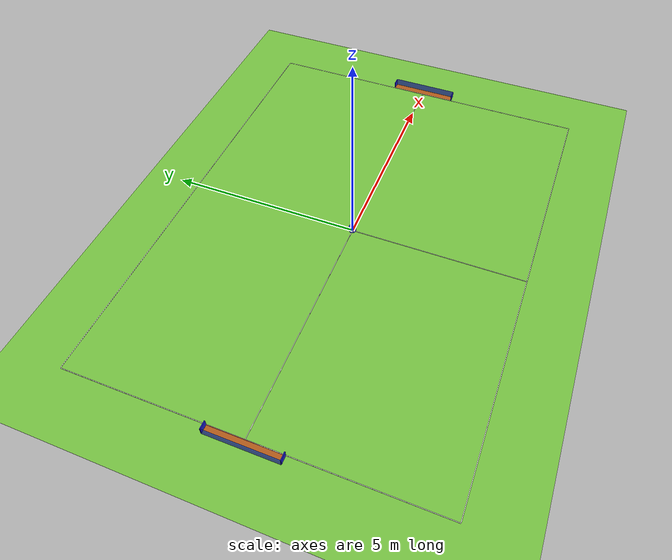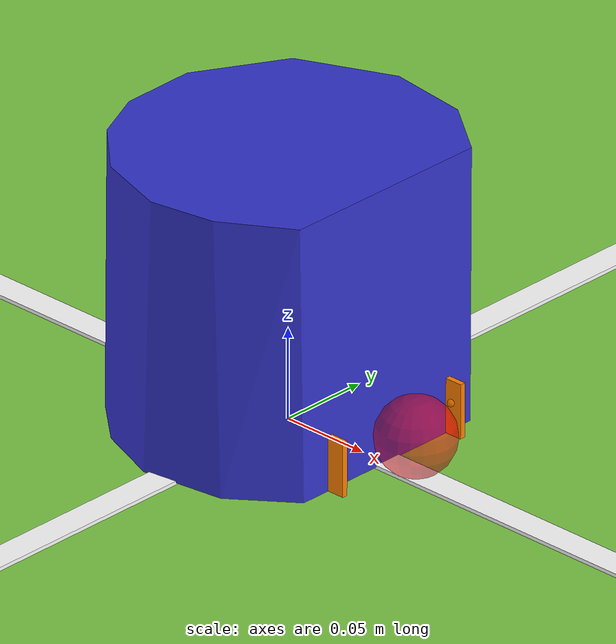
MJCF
<mujoco model="robot_soccer_v3"> <option gravity="0 0 -9.81"
          timestep="0.002"
          solver="Newton"          iterations="10"           ls_iterations="15"       jacobian="dense">        <flag eulerdamp="disable"/>      </option>
  <default>
    <geom contype="0" conaffinity="0" group="1"/>
    <default class="visual">
       <geom contype="0" conaffinity="0" group="0"/> </default>
    <default class="collision">
        <geom contype="1" conaffinity="1" group="1" friction="0.7 0.1 0.1" solref="0.02 1" solimp="0.9 0.95 0.001"/> </default>
  </default>
  <asset>
    <material name="dummy_material_for_mjx" rgba="0.8 0.8 0.8 1"/>
    <mesh name="robot_stl" file="robot_decimated.stl" scale="1 1 1"/>
  </asset>
  <visual>
    <global offwidth="1280" offheight="720"/>
    <map znear="0.01"/>
  </visual>
  <worldbody>
    <camera name="top" pos="0 0 15" zaxis="0 0 1"/>

    <geom name="field" type="plane" size="7.5 6 0.5" pos="0 0 0" class="collision" rgba="0.48 0.78 0.27 1"/>

    <body name="left_goal" pos="-6 0 0">
        <site name="left_goal_line" pos="-0.1 0 0.001" size="0.1 0.9 0.001" rgba="1 0 0 0.5" type="box" class="visual"/>
        <geom name="left_goal_side_top" type="box" size="0.1 0.01 0.09" pos="-0.1 0.9 0.09" class="collision" rgba="0.1 0.1 0.8 1"/>
        <geom name="left_goal_side_bottom" type="box" size="0.1 0.01 0.09" pos="-0.1 -0.9 0.09" class="collision" rgba="0.1 0.1 0.8 1"/>
        <geom name="left_goal_backside" type="box" pos="-0.2 0 0.09" size="0.01 0.9 0.09" class="collision" rgba="0.1 0.1 0.8 0.7"/>
    </body>
    <body name="right_goal" pos="6 0 0">
        <site name="right_goal_line" pos="0.1 0 0.001" size="0.1 0.9 0.001" rgba="1 0 0 0.5" type="box" class="visual"/>
        <geom name="right_goal_side_top" type="box" size="0.1 0.01 0.09" pos="0.1 0.9 0.09" class="collision" rgba="0.1 0.1 0.8 1"/>
        <geom name="right_goal_side_bottom" type="box" size="0.1 0.01 0.09" pos="0.1 -0.9 0.09" class="collision" rgba="0.1 0.1 0.8 1"/>
        <geom name="right_goal_backside" type="box" pos="0.2 0 0.09" size="0.01 0.9 0.09" class="collision" rgba="0.1 0.1 0.8 0.7"/>
    </body>

    <site name="field_line_north" pos="0 4.5 0.001" size="6 0.008 0.001" rgba="1 1 1 1" type="box" class="visual"/>
    <site name="field_line_south" pos="0 -4.5 0.001" size="6 0.008 0.001" rgba="1 1 1 1" type="box" class="visual"/>
    <site name="field_line_east" pos="6 0 0.001" size="0.008 4.5 0.001" rgba="1 1 1 1" type="box" class="visual"/>
    <site name="field_line_west" pos="-6 0 0.001" size="0.008 4.5 0.001" rgba="1 1 1 1" type="box" class="visual"/>
    <site name="field_line_center_vert" pos="0 0 0.001" size="0.008 4.5 0.001" rgba="1 1 1 1" type="box" class="visual"/>
    <site name="field_line_center_hor" pos="0 0 0.001" size="6 0.008 0.001" rgba="1 1 1 1" type="box" class="visual"/>

    <body name="robot_planar_0" pos="0 0 0">
        <joint name="x_slide_0" type="slide" axis="1 0 0" damping="1.0" armature="0.1" limited="false"/>
        <joint name="y_slide_0" type="slide" axis="0 1 0" damping="1.0" armature="0.1" limited="false"/>
        <joint name="z_rotate_0" type="hinge" axis="0 0 1" damping="0.5" armature="0.1" limited="false"/>

        <site name="beam_emitter_site_0" pos="0.072 0.0395 0.02" zaxis="0 -1 0" type="sphere" size="0.002" rgba="1 0.5 0 0.5" />

        <geom name="robot_base_collision_0" type="mesh" mesh="robot_stl" pos="0 0 0.001" class="collision" rgba="0.2 0.2 0.8 1" mass="4.9" solref="0.01 1.5" axisangle="0 0 1 -90"/>

        <body name="kicker_body_0" pos="0.065 0 0.02">
          <site name="kicker_force_site_0" pos="0.021 0 0.0021" size="0.021" rgba="1 0 0 0.5" type="sphere"/>
          <geom name="kicker_cradle_left_0" type="box" class="collision" rgba="1 0.5 0 1" mass="0.003"
                pos="0.008 0.0415 -0.003"   size="0.005 0.0015 0.015"/>
          <geom name="kicker_cradle_right_0" type="box" class="collision" rgba="1 0.5 0 1" mass="0.003"
                pos="0.008 -0.0415 -0.003"  size="0.005 0.0015 0.015"/>
        </body>
    </body>

    <body name="golf_ball" pos=" 0 0 0.021">
        <joint name="ball_x_slide" type="slide" axis="1 0 0" limited="false" damping="0.03" armature="0.0001"/>
        <joint name="ball_y_slide" type="slide" axis="0 1 0" limited="false" damping="0.03" armature="0.0001"/>
        <geom name="golf_ball_geom" type="sphere" size="0.021" class="collision" rgba="1 0 0 1" mass="0.046" friction="0.4 0.01 0.01" solref="0.01 1" solimp="0.9 0.98 0.001"/>
        <site name="ball_center_site" pos="0 0 0" size="0.005" rgba="1 1 0 0.5" type="sphere"/>
    </body>

  </worldbody>
  <actuator>

    <velocity name="x_vel_0" joint="x_slide_0" kv="18" ctrlrange="-2 2"/>
    <velocity name="y_vel_0" joint="y_slide_0" kv="18" ctrlrange="-2 2"/>
    <velocity name="rot_vel_0" joint="z_rotate_0" kv="6"/>

    <general name="dribbler_actuator_0" dyntype="none" gaintype="fixed" biastype="none"
        site="ball_center_site" refsite="kicker_force_site_0"
        ctrlrange="-1 0" forcelimited="true" forcerange="-0.1 0"/>
    <!-- was -0.3. Now we increase it. -->

    <general name="kicker_force_actuator_0" dyntype="none" gaintype="fixed" biastype="none"
        site="ball_center_site" refsite="kicker_force_site_0"
        ctrlrange="0 1" forcelimited="false" forcerange="0 1" gainprm="8"/>
        <!-- gainrpm=15 was too hard. See model 8 -->

  </actuator>

  <sensor>
    <rangefinder name="kicker_beam_rf_0" site="beam_emitter_site_0" cutoff="0.08"/>
  </sensor>

  <contact>
    <pair geom1="golf_ball_geom" geom2="left_goal_side_top"/>
    <pair geom1="golf_ball_geom" geom2="left_goal_side_bottom"/>
    <pair geom1="golf_ball_geom" geom2="left_goal_backside"/>
    <pair geom1="golf_ball_geom" geom2="right_goal_side_top"/>
    <pair geom1="golf_ball_geom" geom2="right_goal_side_bottom"/>
    <pair geom1="golf_ball_geom" geom2="right_goal_backside"/>

    <exclude body1="robot_planar_0" body2="kicker_body_0"/>

    <pair geom1="kicker_cradle_left_0" geom2="golf_ball_geom"/>
    <pair geom1="kicker_cradle_right_0" geom2="golf_ball_geom"/>

  </contact>
  </mujoco>
